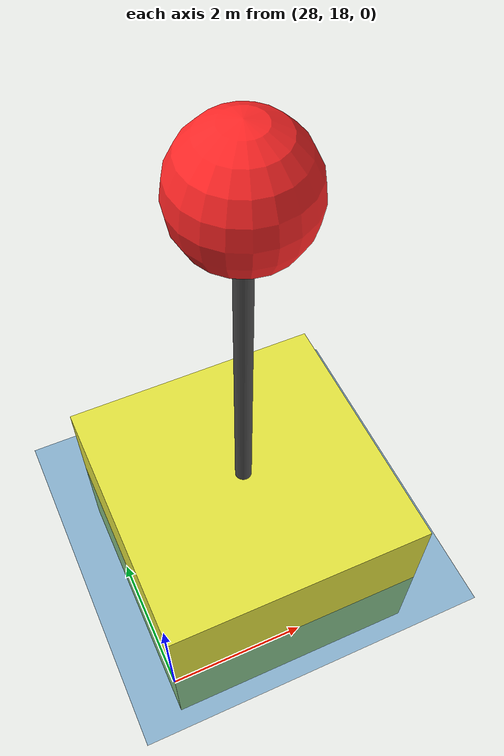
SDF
<sdf version="1.9">
 <world name="surface_harbor">
  <physics name="1ms" type="ignored">
   <max_step_size>0.004</max_step_size>
   <real_time_factor>1.0</real_time_factor>
  </physics>
  <plugin filename="gz-sim-physics-system" name="gz::sim::systems::Physics"/>
  <plugin filename="gz-sim-user-commands-system" name="gz::sim::systems::UserCommands"/>
  <plugin filename="gz-sim-scene-broadcaster-system" name="gz::sim::systems::SceneBroadcaster"/>
  <plugin filename="gz-sim-imu-system" name="gz::sim::systems::Imu"/>
  <plugin filename="gz-sim-navsat-system" name="gz::sim::systems::NavSat"/>
  <plugin filename="gz-sim-buoyancy-system" name="gz::sim::systems::Buoyancy">
   <graded_buoyancy>
    <default_density>1000.0</default_density>
    <density_change><above_depth>0</above_depth><density>1.0</density></density_change>
   </graded_buoyancy>
  </plugin>
  <gravity>0 0 -9.81</gravity>
  <magnetic_field>5.5645e-6 22.8758e-6 -42.3884e-6</magnetic_field>
  <spherical_coordinates>
   <surface_model>EARTH_WGS84</surface_model>
   <world_frame_orientation>ENU</world_frame_orientation>
   <latitude_deg>-33.724223</latitude_deg>
   <longitude_deg>150.679736</longitude_deg>
   <elevation>0</elevation>
   <heading_deg>0</heading_deg>
  </spherical_coordinates>
  <scene><ambient>0.6 0.6 0.6 1.0</ambient><background>0.5 0.7 0.9 1.0</background></scene>
  <light type="directional" name="sun">
   <pose>0 0 50 0 0 0</pose>
   <diffuse>1 1 1 1</diffuse>
   <specular>0.2 0.2 0.2 1</specular>
   <direction>0.3 0.3 -1</direction>
  </light>
  <model name="water_surface">
   <static>true</static>
   <link name="water_surface_link">
    <visual name="water_surface_visual">
     <transparency>0.6</transparency>
     <geometry><box><size>2000 2000 0.01</size></box></geometry>
     <material><ambient>0.0 0.3 0.5 0.6</ambient><diffuse>0.0 0.4 0.7 0.6</diffuse></material>
    </visual>
   </link>
  </model>
  <include><uri>model://ground_station</uri><pose>30 20 0 0 0 0</pose></include>
 </world>
</sdf>

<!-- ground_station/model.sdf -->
<sdf version="1.9">
  <model name="ground_station">
    <static>true</static>
    <link name="base">
      <visual name="hut">
        <geometry><box><size>4 4 3</size></box></geometry>
        <material><ambient>0.85 0.85 0.2 1</ambient><diffuse>0.9 0.9 0.25 1</diffuse></material>
      </visual>
      <visual name="mast">
        <pose>0 0 4.0 0 0 0</pose>
        <geometry><cylinder><radius>0.12</radius><length>5</length></cylinder></geometry>
        <material><ambient>0.2 0.2 0.2 1</ambient><diffuse>0.3 0.3 0.3 1</diffuse></material>
      </visual>
      <visual name="dish">
        <pose>0 0 6.6 0 0 0</pose>
        <geometry><sphere><radius>0.8</radius></sphere></geometry>
        <material><ambient>0.9 0.1 0.1 1</ambient><diffuse>1 0.15 0.15 1</diffuse></material>
      </visual>
      <collision name="c"><geometry><box><size>4 4 3</size></box></geometry></collision>
    </link>
  </model>
</sdf>
